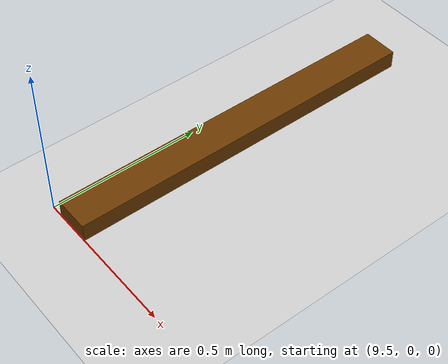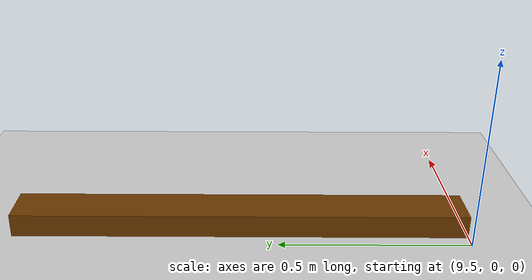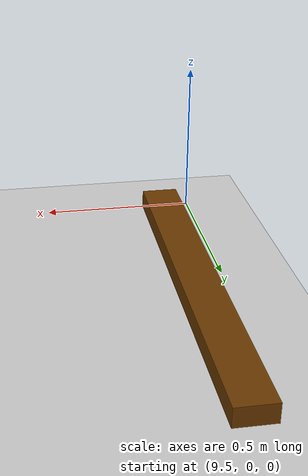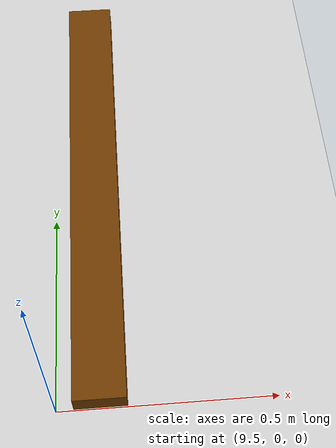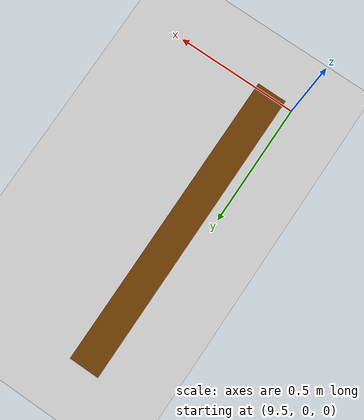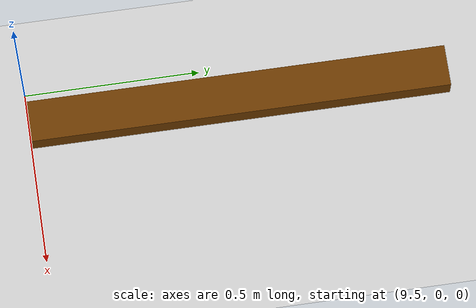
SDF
<?xml version="1.0" ?>
<sdf version="1.5">
    <world name="default">
        <!-- A global light source -->
        <include>
            <uri>model://sun</uri>
        </include>
        <!-- A ground plane -->
        <include>
            <uri>model://ground_plane</uri>
        </include>

        <!-- environment blocks, obstacles or stairs -->
        <model name="static_environment">
            <static>true</static>
            <link name="floor3">
                <pose>9.6 0.6 0 0 0 0</pose>
                <collision name="floor3_collision">
                    <geometry>
                        <box>
                            <size>0.12 1.2 0.12</size>
                        </box>
                    </geometry>
                </collision>
                <visual name="floor3_visual">
                    <geometry>
                        <box>
                            <size>0.12 1.2 0.12</size>
                        </box>
                    </geometry>
                    <material>
                        <ambient>0.2 0.2 0.2 1.0</ambient>
                        <diffuse>.421 0.225 0.0 1.0</diffuse>
                    </material>
                </visual>
            </link>

        </model>

    </world>
</sdf>
